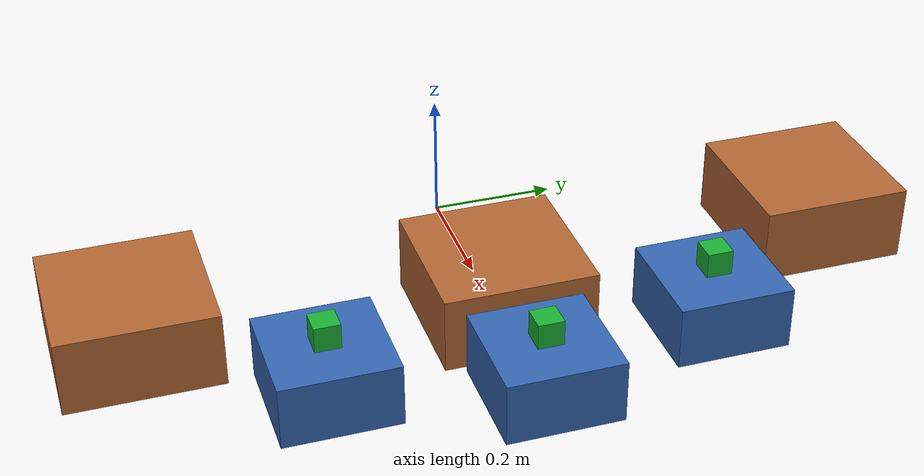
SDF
<?xml version="1.0" ?>
<sdf version="1.6">
  <world name="config_2">
    <model name="source_1">
      <static>true</static>
      <pose>0.45 0.3 0.05 0 0 0</pose>
      <link name="link">
        <collision name="collision"><geometry><box><size>0.18 0.18 0.1</size></box></geometry></collision>
        <visual name="visual"><geometry><box><size>0.18 0.18 0.1</size></box></geometry>
          <material><ambient>0.2 0.4 0.7 1</ambient><diffuse>0.2 0.4 0.7 1</diffuse></material></visual>
      </link>
    </model>
    <model name="sink_1">
      <static>true</static>
      <pose>0.25 0.55 0.06 0 0 0</pose>
      <link name="link">
        <collision name="collision"><geometry><box><size>0.24 0.24 0.12</size></box></geometry></collision>
        <visual name="visual"><geometry><box><size>0.24 0.24 0.12</size></box></geometry>
          <material><ambient>0.7 0.4 0.2 1</ambient><diffuse>0.7 0.4 0.2 1</diffuse></material></visual>
      </link>
    </model>
    <model name="source_2">
      <static>true</static>
      <pose>0.45 -0.3 0.05 0 0 0</pose>
      <link name="link">
        <collision name="collision"><geometry><box><size>0.18 0.18 0.1</size></box></geometry></collision>
        <visual name="visual"><geometry><box><size>0.18 0.18 0.1</size></box></geometry>
          <material><ambient>0.2 0.4 0.7 1</ambient><diffuse>0.2 0.4 0.7 1</diffuse></material></visual>
      </link>
    </model>
    <model name="sink_2">
      <static>true</static>
      <pose>0.25 -0.55 0.06 0 0 0</pose>
      <link name="link">
        <collision name="collision"><geometry><box><size>0.24 0.24 0.12</size></box></geometry></collision>
        <visual name="visual"><geometry><box><size>0.24 0.24 0.12</size></box></geometry>
          <material><ambient>0.7 0.4 0.2 1</ambient><diffuse>0.7 0.4 0.2 1</diffuse></material></visual>
      </link>
    </model>
    <model name="source_3">
      <static>true</static>
      <pose>0.54 0 0.05 0 0 0</pose>
      <link name="link">
        <collision name="collision"><geometry><box><size>0.18 0.18 0.1</size></box></geometry></collision>
        <visual name="visual"><geometry><box><size>0.18 0.18 0.1</size></box></geometry>
          <material><ambient>0.2 0.4 0.7 1</ambient><diffuse>0.2 0.4 0.7 1</diffuse></material></visual>
      </link>
    </model>
    <model name="sink_3">
      <static>true</static>
      <pose>0.32 0 0.06 0 0 0</pose>
      <link name="link">
        <collision name="collision"><geometry><box><size>0.24 0.24 0.12</size></box></geometry></collision>
        <visual name="visual"><geometry><box><size>0.24 0.24 0.12</size></box></geometry>
          <material><ambient>0.7 0.4 0.2 1</ambient><diffuse>0.7 0.4 0.2 1</diffuse></material></visual>
      </link>
    </model>
    <model name="cube_1">
      <pose>0.45 0.3 0.12 0 0 0</pose>
      <link name="link">
        <inertial><mass>0.05</mass>
          <inertia><ixx>1.33e-5</ixx><iyy>1.33e-5</iyy><izz>1.33e-5</izz><ixy>0</ixy><ixz>0</ixz><iyz>0</iyz></inertia></inertial>
        <collision name="collision"><geometry><box><size>0.04 0.04 0.04</size></box></geometry>
          <surface><friction><ode><mu>1.0</mu><mu2>1.0</mu2></ode></friction></surface></collision>
        <visual name="visual"><geometry><box><size>0.04 0.04 0.04</size></box></geometry>
          <material><ambient>0.1 0.7 0.2 1</ambient><diffuse>0.1 0.7 0.2 1</diffuse></material></visual>
      </link>
      <plugin filename="gz-sim-detachable-joint-system" name="gz::sim::systems::DetachableJoint">
        <parent_link>link</parent_link>
        <child_model>ur5_with_gripper</child_model>
        <child_link>wrist_3_link</child_link>
        <attach_topic>/cube_1/attach</attach_topic>
        <detach_topic>/cube_1/detach</detach_topic>
        <output_topic>/cube_1/state</output_topic>
        <suppress_child_warning>true</suppress_child_warning>
      </plugin>
    </model>
    <model name="cube_2">
      <pose>0.45 -0.3 0.12 0 0 0</pose>
      <link name="link">
        <inertial><mass>0.05</mass>
          <inertia><ixx>1.33e-5</ixx><iyy>1.33e-5</iyy><izz>1.33e-5</izz><ixy>0</ixy><ixz>0</ixz><iyz>0</iyz></inertia></inertial>
        <collision name="collision"><geometry><box><size>0.04 0.04 0.04</size></box></geometry>
          <surface><friction><ode><mu>1.0</mu><mu2>1.0</mu2></ode></friction></surface></collision>
        <visual name="visual"><geometry><box><size>0.04 0.04 0.04</size></box></geometry>
          <material><ambient>0.1 0.7 0.2 1</ambient><diffuse>0.1 0.7 0.2 1</diffuse></material></visual>
      </link>
      <plugin filename="gz-sim-detachable-joint-system" name="gz::sim::systems::DetachableJoint">
        <parent_link>link</parent_link>
        <child_model>ur5_with_gripper</child_model>
        <child_link>wrist_3_link</child_link>
        <attach_topic>/cube_2/attach</attach_topic>
        <detach_topic>/cube_2/detach</detach_topic>
        <output_topic>/cube_2/state</output_topic>
        <suppress_child_warning>true</suppress_child_warning>
      </plugin>
    </model>
    <model name="cube_3">
      <pose>0.54 0 0.12 0 0 0</pose>
      <link name="link">
        <inertial><mass>0.05</mass>
          <inertia><ixx>1.33e-5</ixx><iyy>1.33e-5</iyy><izz>1.33e-5</izz><ixy>0</ixy><ixz>0</ixz><iyz>0</iyz></inertia></inertial>
        <collision name="collision"><geometry><box><size>0.04 0.04 0.04</size></box></geometry>
          <surface><friction><ode><mu>1.0</mu><mu2>1.0</mu2></ode></friction></surface></collision>
        <visual name="visual"><geometry><box><size>0.04 0.04 0.04</size></box></geometry>
          <material><ambient>0.1 0.7 0.2 1</ambient><diffuse>0.1 0.7 0.2 1</diffuse></material></visual>
      </link>
      <plugin filename="gz-sim-detachable-joint-system" name="gz::sim::systems::DetachableJoint">
        <parent_link>link</parent_link>
        <child_model>ur5_with_gripper</child_model>
        <child_link>wrist_3_link</child_link>
        <attach_topic>/cube_3/attach</attach_topic>
        <detach_topic>/cube_3/detach</detach_topic>
        <output_topic>/cube_3/state</output_topic>
        <suppress_child_warning>true</suppress_child_warning>
      </plugin>
    </model>
  </world>
</sdf>
